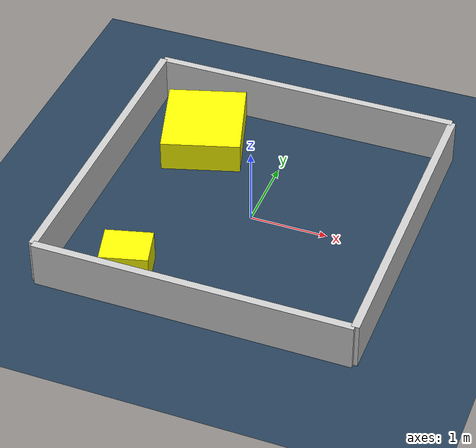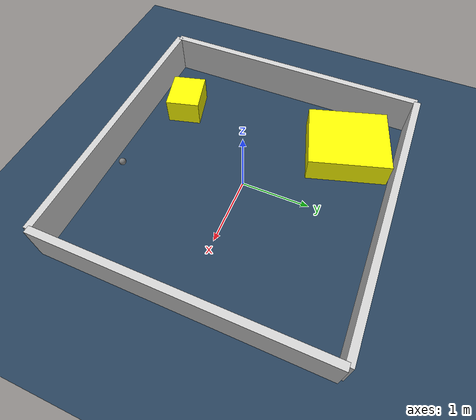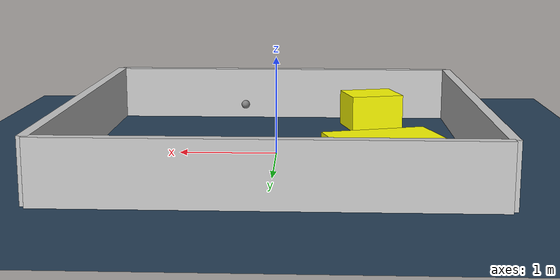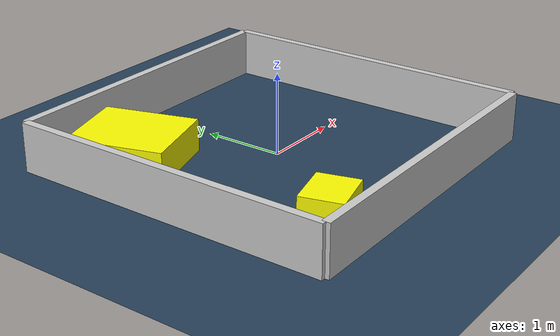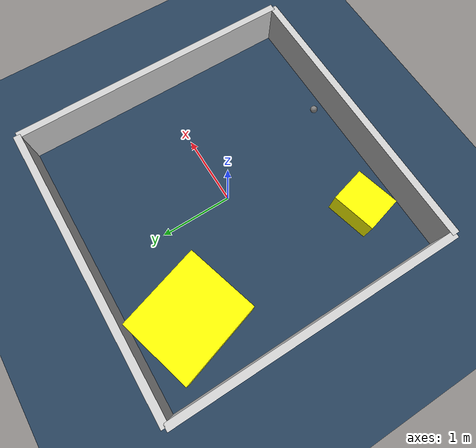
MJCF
<?xml version="1.0" ?>
<mujoco model="generated_environment">
  <option timestep="0.01" integrator="RK4" cone="elliptic"/>
  <default>
    <geom density="1"/>
  </default>
  <asset>
    <texture builtin="gradient" height="3072" rgb1="0.3 0.5 0.7" rgb2="0 0 0" type="skybox" width="512"/>
    <texture builtin="checker" height="300" mark="edge" markrgb="0.8 0.8 0.8" name="groundplane" rgb1="0.2 0.3 0.4" rgb2="0.1 0.2 0.3" type="2d" width="300"/>
    <material name="groundplane" reflectance="0.2" texrepeat="5 5" texture="groundplane" texuniform="true"/>
    <material name="robot" rgba="0.0 1.0 0.0 1"/>
  </asset>
  <worldbody>
    <light dir="0 0 -1" directional="true" pos="0 0 1.5"/>
    <geom condim="4" friction="1.0 0.005 0.001" material="groundplane" name="floor" size="0 0 0.05" type="plane"/>
    <body name="walls">
      <geom name="wall_1" condim="4" pos="-2.0 0.0 0.3" rgba="0.800000011920929 0.800000011920929 0.800000011920929 1.0" size="0.05 2.0 0.3" type="box"/>
      <geom name="wall_2" condim="4" pos="2.0 0.0 0.3" rgba="0.800000011920929 0.800000011920929 0.800000011920929 1.0" size="0.05 2.0 0.3" type="box"/>
      <geom name="wall_3" condim="4" pos="0.0 -2.0 0.3" rgba="0.800000011920929 0.800000011920929 0.800000011920929 1.0" size="2.0 0.05 0.3" type="box"/>
      <geom name="wall_4" condim="4" pos="0.0 2.0 0.3" rgba="0.800000011920929 0.800000011920929 0.800000011920929 1.0" size="2.0 0.05 0.3" type="box"/>
    </body>
    <body name="robot">
      <joint name="joint_x" type="slide" pos="0 0 0" axis="1 0 0"/>
      <joint name="joint_y" type="slide" pos="0 0 0" axis="0 1 0"/>
      <geom name="robot" type="sphere" pos="0.4460224333558793 -1.720254656046364 0.2" size="0.05" mass="5." friction="1.0 0.005 0.0001" condim="4"/>
      <site name="sensor_ball"/>
    </body>
    <body name="obstacle_1_movable">
      <geom name="obstacle_1_movable" condim="4" pos="-1.1154127552296078 1.22230814374093 0.2" euler="0 0 286.8234573119946" friction="1.0 0.005 0.001" rgba="1 1 0 1" size="0.591363244315105 0.5130650232380856 0.2" type="box" mass="0.1"/>
      <joint type="free"/>
    </body>
    <body name="obstacle_2_movable">
      <geom name="obstacle_2_movable" condim="4" pos="-1.0546905705185277 -1.4299263359163379 0.2" euler="0 0 194.76597353661955" friction="1.0 0.005 0.001" rgba="1 1 0 1" size="0.30123700902169825 0.2543270028826827 0.2" type="box" mass="0.1"/>
      <joint type="free"/>
    </body>
  </worldbody>
  <actuator>
    <motor name="actuator_x" joint="joint_x" gear="1" ctrlrange="-1 1"/>
    <motor name="actuator_y" joint="joint_y" gear="1" ctrlrange="-1 1"/>
  </actuator>
</mujoco>
